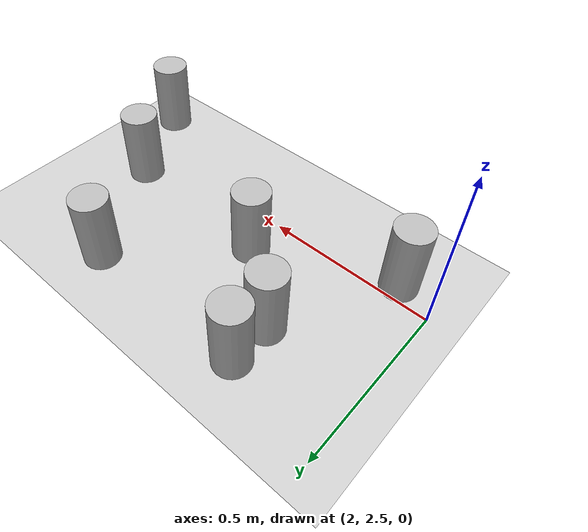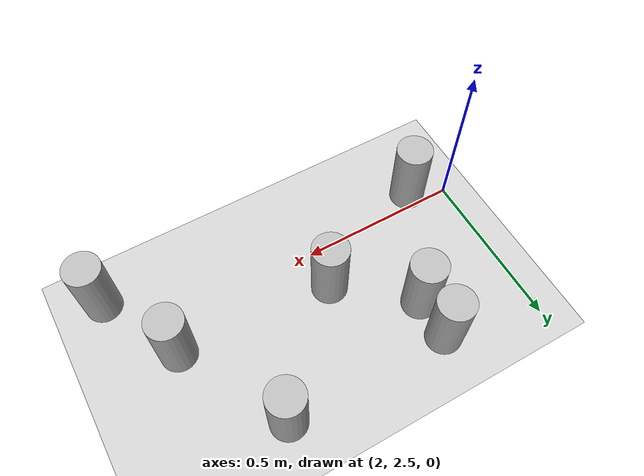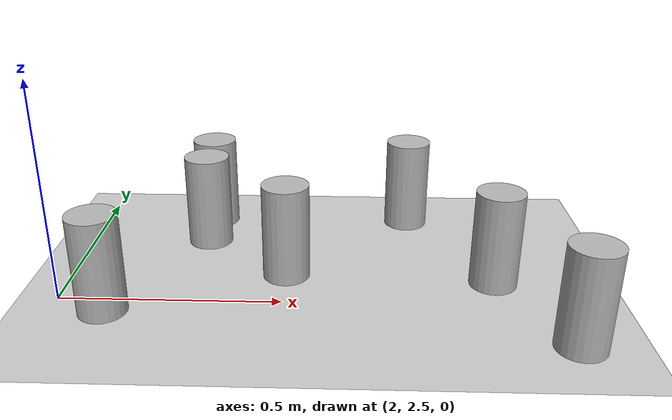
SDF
<sdf version="1.6">
 <world name="default">
  <model name="ground_plane">
   <static>1</static>
   <link name="link">
    <collision name="collision">
     <geometry><plane><normal>0 0 1</normal><size>100 100</size></plane></geometry>
     <surface><friction><ode><mu>100</mu><mu2>50</mu2></ode></friction></surface>
    </collision>
    <visual name="visual">
     <cast_shadows>0</cast_shadows>
     <geometry><plane><normal>0 0 1</normal><size>100 100</size></plane></geometry>
     <material>
      <script><uri>file://media/materials/scripts/gazebo.material</uri><name>Gazebo/Grey</name></script>
     </material>
    </visual>
   </link>
  </model>
  <model name="beer">
   <link name="link">
    <pose>0 0 0.115 0 -0 0</pose>
    <inertial>
     <mass>0.39</mass>
     <inertia><ixx>0.00058</ixx><ixy>0</ixy><ixz>0</ixz><iyy>0.00058</iyy><iyz>0</iyz><izz>0.00019</izz></inertia>
    </inertial>
    <collision name="collision">
     <geometry><cylinder><radius>0.055</radius><length>0.23</length></cylinder></geometry>
    </collision>
    <visual name="visual">
     <geometry><cylinder><radius>0.055</radius><length>0.23</length></cylinder></geometry>
     <material>
      <script>
       <uri>model://beer/materials/scripts</uri>
       <uri>model://beer/materials/textures</uri>
       <name>Beer/Diffuse</name>
      </script>
     </material>
    </visual>
   </link>
   <pose>2.29627 2.92534 -8e-06 -0 -0 -2e-06</pose>
  </model>
  <model name="beer_0">
   <link name="link">
    <pose>0 0 0.115 0 -0 0</pose>
    <inertial>
     <mass>0.39</mass>
     <inertia><ixx>0.00058</ixx><ixy>0</ixy><ixz>0</ixz><iyy>0.00058</iyy><iyz>0</iyz><izz>0.00019</izz></inertia>
    </inertial>
    <collision name="collision">
     <geometry><cylinder><radius>0.055</radius><length>0.23</length></cylinder></geometry>
    </collision>
    <visual name="visual">
     <geometry><cylinder><radius>0.055</radius><length>0.23</length></cylinder></geometry>
     <material>
      <script>
       <uri>model://beer/materials/scripts</uri>
       <uri>model://beer/materials/textures</uri>
       <name>Beer/Diffuse</name>
      </script>
     </material>
    </visual>
   </link>
   <pose>2.29627 2.79932 -8e-06 -0 -0 -2e-06</pose>
  </model>
  <model name="beer_1">
   <link name="link">
    <pose>0 0 0.115 0 -0 0</pose>
    <inertial>
     <mass>0.39</mass>
     <inertia><ixx>0.00058</ixx><ixy>0</ixy><ixz>0</ixz><iyy>0.00058</iyy><iyz>0</iyz><izz>0.00019</izz></inertia>
    </inertial>
    <collision name="collision">
     <geometry><cylinder><radius>0.055</radius><length>0.23</length></cylinder></geometry>
    </collision>
    <visual name="visual">
     <geometry><cylinder><radius>0.055</radius><length>0.23</length></cylinder></geometry>
     <material>
      <script>
       <uri>model://beer/materials/scripts</uri>
       <uri>model://beer/materials/textures</uri>
       <name>Beer/Diffuse</name>
      </script>
     </material>
    </visual>
   </link>
   <pose>2.11447 2.45362 -8e-06 -0 -0 -2e-06</pose>
  </model>
  <model name="beer_3">
   <link name="link">
    <pose>0 0 0.115 0 -0 0</pose>
    <inertial>
     <mass>0.39</mass>
     <inertia><ixx>0.00058</ixx><ixy>0</ixy><ixz>0</ixz><iyy>0.00058</iyy><iyz>0</iyz><izz>0.00019</izz></inertia>
    </inertial>
    <collision name="collision">
     <geometry><cylinder><radius>0.055</radius><length>0.23</length></cylinder></geometry>
    </collision>
    <visual name="visual">
     <geometry><cylinder><radius>0.055</radius><length>0.23</length></cylinder></geometry>
     <material>
      <script>
       <uri>model://beer/materials/scripts</uri>
       <uri>model://beer/materials/textures</uri>
       <name>Beer/Diffuse</name>
      </script>
     </material>
    </visual>
   </link>
   <pose>2.50304 2.62456 -8e-06 -0 -0 -2e-06</pose>
  </model>
  <model name="beer_4">
   <link name="link">
    <pose>0 0 0.115 0 -0 0</pose>
    <inertial>
     <mass>0.39</mass>
     <inertia><ixx>0.00058</ixx><ixy>0</ixy><ixz>0</ixz><iyy>0.00058</iyy><iyz>0</iyz><izz>0.00019</izz></inertia>
    </inertial>
    <collision name="collision">
     <geometry><cylinder><radius>0.055</radius><length>0.23</length></cylinder></geometry>
    </collision>
    <visual name="visual">
     <geometry><cylinder><radius>0.055</radius><length>0.23</length></cylinder></geometry>
     <material>
      <script>
       <uri>model://beer/materials/scripts</uri>
       <uri>model://beer/materials/textures</uri>
       <name>Beer/Diffuse</name>
      </script>
     </material>
    </visual>
   </link>
   <pose>3.11529 2.34893 -8e-06 -0 -0 -2e-06</pose>
  </model>
  <model name="beer_5">
   <link name="link">
    <pose>0 0 0.115 0 -0 0</pose>
    <inertial>
     <mass>0.39</mass>
     <inertia><ixx>0.00058</ixx><ixy>0</ixy><ixz>0</ixz><iyy>0.00058</iyy><iyz>0</iyz><izz>0.00019</izz></inertia>
    </inertial>
    <collision name="collision">
     <geometry><cylinder><radius>0.055</radius><length>0.23</length></cylinder></geometry>
    </collision>
    <visual name="visual">
     <geometry><cylinder><radius>0.055</radius><length>0.23</length></cylinder></geometry>
     <material>
      <script>
       <uri>model://beer/materials/scripts</uri>
       <uri>model://beer/materials/textures</uri>
       <name>Beer/Diffuse</name>
      </script>
     </material>
    </visual>
   </link>
   <pose>2.98284 2.59884 -8e-06 -0 -0 -2e-06</pose>
  </model>
  <model name="beer_6">
   <link name="link">
    <pose>0 0 0.115 0 -0 0</pose>
    <inertial>
     <mass>0.39</mass>
     <inertia><ixx>0.00058</ixx><ixy>0</ixy><ixz>0</ixz><iyy>0.00058</iyy><iyz>0</iyz><izz>0.00019</izz></inertia>
    </inertial>
    <collision name="collision">
     <geometry><cylinder><radius>0.055</radius><length>0.23</length></cylinder></geometry>
    </collision>
    <visual name="visual">
     <geometry><cylinder><radius>0.055</radius><length>0.23</length></cylinder></geometry>
     <material>
      <script>
       <uri>model://beer/materials/scripts</uri>
       <uri>model://beer/materials/textures</uri>
       <name>Beer/Diffuse</name>
      </script>
     </material>
    </visual>
   </link>
   <pose>2.80314 2.92534 -8e-06 -0 -0 -2e-06</pose>
  </model>
 </world>
</sdf>
